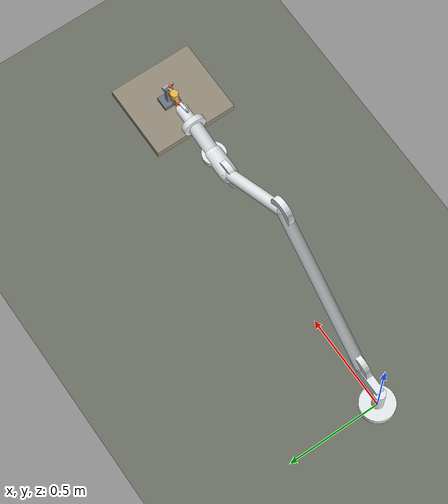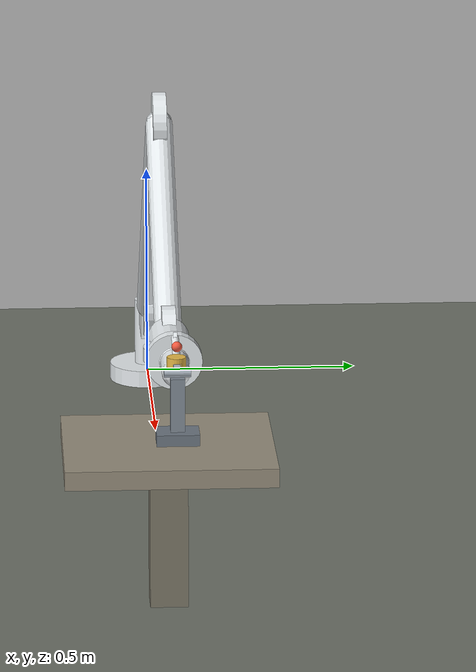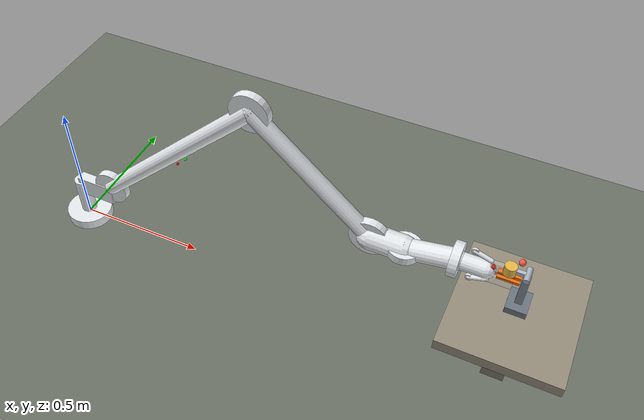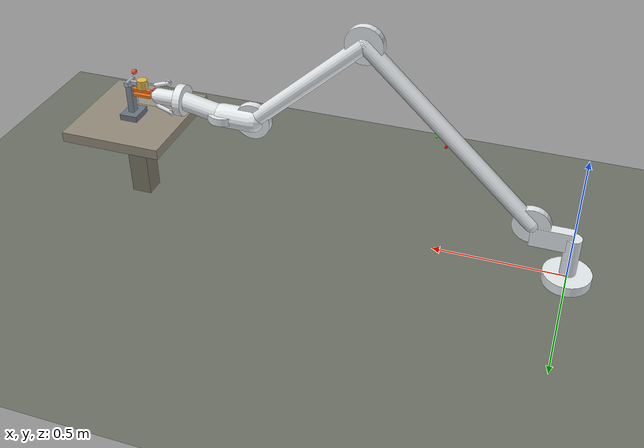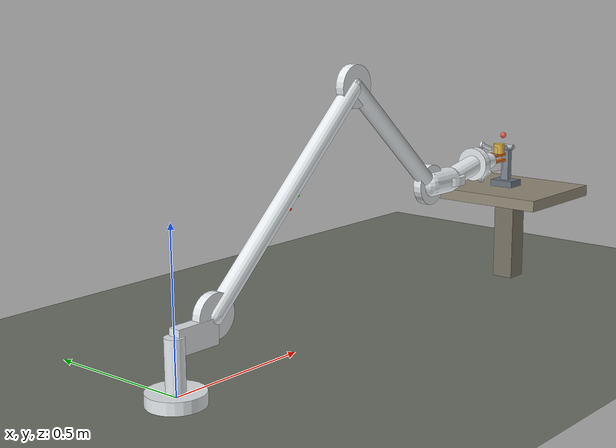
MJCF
<mujoco model="underwater_sampling_l8">
  <include file="_base.xml"/>

  <worldbody>
    <!-- 阀体 + 阀杆（静态）：阀杆是沿 y 的水平轴 -->
    <body name="valve_body" pos="1.72 0.00 0.35">
      <geom name="valve_base" type="box" size="0.035 0.045 0.012" pos="0 0 0.012"
            rgba="0.42 0.46 0.50 1" friction="0.8 0.02 0.001"/>
      <geom name="valve_post" type="box" size="0.012 0.015 0.063" pos="0 0 0.075"
            rgba="0.50 0.54 0.58 1" friction="0.8 0.02 0.001"/>
      <geom name="valve_shaft" type="cylinder" size="0.010 0.028" pos="0 0 0.150"
            quat="0.70710678 0.70710678 0 0"
            rgba="0.66 0.70 0.74 1" friction="0.8 0.02 0.001"/>
    </body>

    <body name="object" pos="1.665 0.00 0.50">
      <joint name="object_joint" type="hinge" axis="0 1 0" pos="0.055 0 0"
             range="-1.31 1.31" limited="true" damping="2.0" frictionloss="0.60"
             armature="0.010" solreflimit="0.002 1"/>
      <geom name="object_geom" type="cylinder" size="0.02 0.018" mass="0.15"
            solref="0.002 1" rgba="0.90 0.72 0.28 1" friction="0.8 0.02 0.001"/>
      <geom name="lever_arm" type="box" size="0.0275 0.007 0.007" pos="0.0275 0 0" mass="0.10"
            rgba="0.72 0.74 0.78 1" friction="0.8 0.02 0.001"/>
      <site name="valve_knob_site" pos="0 0 0" size="0.006"/>
    </body>

    <!-- 目标位置指示球（纯视觉，不参与碰撞）：标出"手柄应当转到哪里"。
         env 按指令把它摆到开位/关位对应的握把三维位置 —— 因为绕 y 轴转动时
         开位和关位的 (x,y) 相同（只差 z），所以只能用三维位置区分，不能放在地面上。 -->
    <body name="place_target" pos="1.6925 0.00 0.5476">
      <geom name="goal_marker" type="sphere" size="0.011"
            rgba="0.95 0.35 0.25 1" contype="0" conaffinity="0"/>
      <site name="place_target_site" pos="0 0 0" size="0.008"/>
    </body>
  </worldbody>

  <keyframe>
    <!-- 前 8 维 = 臂(6)+夹爪(2)；第 9 维 = 阀门铰链角（0=水平起始） -->
    <key name="home" qpos="0.0374 -0.5858 -1.4717 0.3109 -0.1223 -1.5642 0.22 0.22 0.0"
         ctrl="0.0374 -0.5858 -1.4717 0.3109 -0.1223 -1.5642 0.22 0.22"/>
  </keyframe>
</mujoco>

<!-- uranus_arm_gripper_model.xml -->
<mujoco model="uranus_arm_gripper_model_a">
  <compiler angle="radian"/>

  <!-- Model A: complete kinematic/dynamic structure with STL meshes replaced
       by primitive geometry. Gripper simplified to a direct-drive 2-jaw design. -->
  <option timestep="0.001" solver="Newton" iterations="100" tolerance="1e-12"
          cone="elliptic" impratio="10">
    <flag gravity="enable"/>
  </option>

  <worldbody>
    <camera name="top_view" pos="0 0 0.8" xyaxes="0 -1 0  0 0 1" fovy="50"/>
    <body name="base_link" pos="0 0 0">
      <inertial pos="0.00022653 -8.6509e-12 0.017246" quat="1 0 0 0" mass="2.7072" diaginertia="0.0076487 0.0076027 0.014205"/>
      <geom name="base_link_primitive" type="cylinder" size="0.09 0.02" rgba="0.89804 0.91765 0.92941 1"/>

      <body name="link1" pos="0 0 0.021514">
        <inertial pos="0.045493 -0.00030184 0.10957" quat="0.509921 0.489886 0.489726 0.51006" mass="22" diaginertia="0.1916 0.161437 0.138963"/>
        <joint name="joint1" type="hinge" limited="true" range="-3.14 3.14" damping="3000" armature="1" frictionloss="50" pos="0 0 0" axis="0 0 1"/>
        <geom name="link1_hub" type="cylinder" pos="0 0 0.06545" size="0.03 0.09089" rgba="0.89804 0.91765 0.92941 1"/>
        <geom name="link1_beam" type="box" size="0.076525 0.02 0.04" pos="0.076525 0 0.14" rgba="0.89804 0.91765 0.92941 1"/>

        <body name="link2" pos="0.15305 0 0.18178" quat="0.70710678 0.70710678 0 0">
          <inertial pos="0.30213 0.30426 6.3402e-05" quat="0.647239 0.284761 -0.647233 0.284749" mass="24" diaginertia="1.403 1.38077 0.10333"/>
          <joint name="joint2" type="hinge" limited="true" range="-1.527 -0.108" ref="-0.812224" damping="2000" armature="1" frictionloss="80" pos="0 0 0" axis="0 0 1"/>
          <geom name="link2_hub" type="cylinder" size="0.07 0.015" rgba="0.89804 0.91765 0.92941 1"/>
          <geom name="link2_beam" type="capsule" fromto="0 0 0 0.63529 0.60209 0" size="0.03" rgba="0.89804 0.91765 0.92941 1"/>

          <body name="link3" pos="0.63529 0.60209 0">
            <inertial pos="0.24045 -0.15902 0.00044845" quat="0.283173 0.64737 -0.285062 0.647661" mass="13" diaginertia="0.29 0.280416 0.0395839"/>
            <joint name="joint3" type="hinge" limited="true" range="-2.857 -0.164" ref="-1.485888" damping="1500" armature="1" frictionloss="50" pos="0 0 0" axis="0 0 1"/>
            <geom name="link3_hub" type="cylinder" size="0.07 0.015" rgba="0.89804 0.91765 0.92941 1"/>
            <geom name="link3_beam" type="capsule" fromto="0 0 0 0.42294 -0.37646 -0.0022318" size="0.03" rgba="0.89804 0.91765 0.92941 1"/>

            <body name="link4" pos="0.42294 -0.37646 -0.0022318">
              <inertial pos="0.052755 0.00053808 0.00076395" quat="0.500656 0.499526 0.500109 0.499708" mass="9" diaginertia="0.0464 0.0441 0.0169"/>
              <joint name="joint4" type="hinge" ref="0.726678" damping="1500" armature="1" frictionloss="20" pos="0 0 0" axis="0 0 1" limited="true" range="-2.0 2.0"/>
              <geom name="link4_hub" type="cylinder" size="0.07 0.015" rgba="0.89804 0.91765 0.92941 1"/>
              <geom name="link4_beam" type="capsule" fromto="0 0 0 0.12065 -7.62e-05 0" size="0.045" rgba="0.89804 0.91765 0.92941 1"/>

              <body name="link5" pos="0.12065 -7.62e-05 0" quat="0.499998 0.5 0.5 -0.500002">
                <inertial pos="0.0007351 0.093393 0.00070242" quat="0.526825 0.464754 0.477704 0.527502" mass="5.2" diaginertia="0.020302 0.015217 0.013781"/>
                <joint type="hinge" limited="true" range="-1.5708 1.5708" damping="800" armature="1" frictionloss="15" name="joint5" pos="0 0 0" axis="0 0 -1"/>
                <geom name="link5_hub" type="cylinder" size="0.06 0.015" rgba="0.89804 0.91765 0.92941 1"/>
                <geom name="link5_beam" type="capsule" fromto="0 0 0 0 0.168 -0.033659" size="0.036" rgba="0.89804 0.91765 0.92941 1"/>

                <body name="link6" pos="0 0.168 -0.033659" quat="-2.59734e-06 -2.59735e-06 0.707108 0.707105">
                  <camera name="wrist_cam" pos="0 0.1 0.05" xyaxes="1 0 0 0 -1 0" fovy="60"/>
                  <inertial pos="-6.1362e-05 -1.137e-05 0.0050252" quat="0.499873 0.500366 -0.499617 0.500144" mass="1.8289" diaginertia="0.0022148 0.0019893 0.0014508"/>
                  <joint name="joint6" type="hinge" limited="true" range="-3.14 3.14" damping="300" armature="0.1" frictionloss="5" pos="0 0 0" axis="0 0 1"/>
                  <geom name="link6_hub" type="cylinder" size="0.06 0.015" rgba="0.89804 0.91765 0.92941 1"/>
                  <geom name="link6_mount" type="capsule" fromto="0 0 0 0 0 0.096835" size="0.03" rgba="0.89804 0.91765 0.92941 1"/>

                  <body name="tcp_link" pos="0 0 0.105">
                    <geom type="capsule" fromto="0 0 -0.02 0 0 0.02" size="0.008" rgba="1 0.2 0.2 0.5" contype="0" conaffinity="0"/>
                  </body>

                  <body name="jaw1.1" pos="0 -0.063665 0.051257" quat="-0.707105 0 0.707108 0">
                    <inertial pos="0.0113615 0.00520096 -1.75914e-05" quat="0.409182 0.409474 0.576807 0.576364" mass="0.141315" diaginertia="6.71236e-05 3.92491e-05 3.46505e-05"/>
                    <joint name="jaw1.1" type="hinge" damping="2" armature="0.01" pos="0 0 0" axis="0 0 -1" limited="true" range="-0.25 0.35"/>
                    <geom name="jaw1_upper_pin" type="cylinder" size="0.012 0.004" rgba="0.898039 0.917647 0.929412 1" contype="0" conaffinity="0"/>
                    <geom name="jaw1_upper_link" type="capsule" fromto="0 0 0 0.054095 0.018434 0" size="0.008" rgba="0.898039 0.917647 0.929412 1" contype="0" conaffinity="0"/>

                    <body name="jaw1.1.1" pos="0.054095 0.018434 0" quat="0 -1 0 0">
                      <inertial pos="0.0349789 -0.0215957 6.0096e-09" quat="0.553511 0.553511 0.440029 0.440029" mass="0.610989" diaginertia="0.000555616 0.000469289 0.000163674"/>
                      <geom name="jaw1_pad_primitive" type="box" pos="0.04 -0.017 0" size="0.04 0.017 0.008" rgba="1 1 1 0.25" contype="0" conaffinity="0"/>
                      <!-- 齿面改成橙色并去掉透明：原来 rgba 的 alpha=0（完全透明），
                           遥操作时人根本看不见哪两片在夹东西（看到的大白块是旁边不参与碰撞的装饰垫）。 -->
                      <geom name="jaw1_tooth_col" type="box" pos="0.0635 -0.0337 -0.00003" size="0.0364 0.0051 0.008" condim="4" friction="10 0.02 0.001" solref="0.002 1" rgba="1 0.45 0.05 1"/>
                      <site name="hole_site_3" pos="0.00508 -0.027152 0" size="0.001" rgba="1 0 0 1"/>
                      <site name="jaw1_a" pos="0.0075 -0.027 0" size="0.01" rgba="1 0 0 1"/>
                    </body>
                  </body>

                  <body name="jaw2.1" pos="0 0.063665 0.051257" quat="0.707105 0 -0.707108 0">
                    <inertial pos="0.0113614 -0.00520085 1.75948e-05" quat="0.576812 0.576359 0.409177 0.409479" mass="0.141315" diaginertia="6.71236e-05 3.92491e-05 3.46505e-05"/>
                    <joint name="jaw2.1" type="hinge" damping="2" armature="0.01" pos="0 0 0" axis="0 0 1" limited="true" range="-0.25 0.35"/>
                    <geom name="jaw2_upper_pin" type="cylinder" size="0.012 0.004" rgba="0.898039 0.917647 0.929412 1" contype="0" conaffinity="0"/>
                    <geom name="jaw2_upper_link" type="capsule" fromto="0 0 0 0.054095 -0.018434 0" size="0.008" rgba="0.898039 0.917647 0.929412 1" contype="0" conaffinity="0"/>

                    <body name="jaw2.1.1" pos="0.054095 -0.018434 0" quat="0 -1 0 0">
                      <inertial pos="0.0378307 0.0233564 -6.41901e-09" quat="0.440029 0.440029 0.553511 0.553511" mass="0.56493" diaginertia="0.000545939 0.000468282 0.000153997"/>
                      <geom name="jaw2_pad_primitive" type="box" pos="0.04 0.017 0" size="0.04 0.017 0.008" rgba="1 1 1 0.25" contype="0" conaffinity="0"/>
                      <geom name="jaw2_tooth_col" type="box" pos="0.0635 0.0337 -0.00003" size="0.0364 0.0051 0.008" condim="4" friction="10 0.02 0.001" solref="0.002 1" rgba="1 0.45 0.05 1"/>
                      <site name="hole_site_4" pos="0.00508 0.027152 0" size="0.001" rgba="1 0 0 1"/>
                      <site name="jaw2_a" pos="0.0075 0.027 0" size="0.01" rgba="1 0 0 1"/>
                    </body>
                  </body>
                </body>
              </body>
            </body>
          </body>

          <site name="hole_site_1" pos="0.33041 0.25666 0" size="0.005" rgba="1 0 0 1"/>
          <site name="hole_site_2" pos="0.36645 0.29246 0" size="0.005" rgba="0 1 0 1"/>
        </body>
      </body>
    </body>
  </worldbody>

  <contact>
    <exclude body1="base_link" body2="link1"/>
    <exclude body1="link2" body2="link3"/>
    <exclude body1="link3" body2="link4"/>
    <exclude body1="link4" body2="link5"/>
    <exclude body1="link5" body2="link6"/>
    <exclude body1="link6" body2="jaw1.1"/>
    <exclude body1="link6" body2="jaw2.1"/>
    <exclude body1="jaw1.1.1" body2="jaw1.1"/>
    <exclude body1="jaw2.1.1" body2="jaw2.1"/>
  </contact>

  <actuator>
    <position name="joint1_act" joint="joint1" kp="450000" kv="2750" ctrlrange="-3.14 3.14"/>
    <position name="joint2_act" joint="joint2" kp="450000" kv="2750" ctrlrange="-1.527 -0.108"/>
    <position name="joint3_act" joint="joint3" kp="450000" kv="2750" ctrlrange="-2.857 -0.164"/>
    <position name="joint4_act" joint="joint4" kp="300000" kv="1100" ctrlrange="-2.18 1.78"/>
    <position name="joint5_act" joint="joint5" kp="240000" kv="825" ctrlrange="-1.5708 1.5708"/>
    <position name="joint6_act" joint="joint6" kp="90000" kv="550" ctrlrange="-3.14 3.14"/>
    <!-- Gripper: 2-jaw direct-drive position control (the original tendon + 4-bar
         linkage sags open at horizontal poses, so it was simplified). -->
    <position name="jaw1.1_act" joint="jaw1.1" kp="3000" kv="50" ctrlrange="-0.25 0.35"/>
    <position name="jaw2.1_act" joint="jaw2.1" kp="3000" kv="50" ctrlrange="-0.25 0.35"/>
  </actuator>

  <sensor>
    <jointpos name="gripper_position" joint="jaw1.1"/>
  </sensor>

  <!-- NOTE: no built-in "home" keyframe here; each scene (scene_*.xml) defines its
       own keyframe to keep qpos length matched (reach vs grasp freejoint). -->
</mujoco>

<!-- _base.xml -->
<mujoco model="underwater_sampling_base">
  <compiler angle="radian"/>
  <option timestep="0.002" integrator="implicitfast" cone="elliptic" impratio="10"/>

  <visual>
    <!-- 离屏渲染缓冲：要 >= 显示窗口尺寸，否则 mujoco.Renderer 直接报错 -->
    <global offwidth="1280" offheight="800"/>
    <headlight ambient="0.45 0.45 0.45" diffuse="0.55 0.55 0.55" specular="0.1 0.1 0.1"/>
    <quality shadowsize="2048"/>
    <map znear="0.02" zfar="30"/>
  </visual>

  <worldbody>
    <!-- 海床：比抓取场景的地面暗、低饱和，给"低对比度"留出余量 -->
    <geom name="floor" type="plane" size="4 4 0.05" pos="0 0 -0.05" rgba="0.42 0.44 0.40 1"/>
    <light pos="3 3 4" dir="-3 -3 -4" diffuse="0.70 0.70 0.68"/>

    <!-- 沉积物工作台（等价于抓取场景里的"桌面"） -->
    <body name="seabed" pos="1.72 -0.02 0">
      <geom name="seabed_top" type="box" size="0.20 0.22 0.02" pos="0 0 0.33"
            rgba="0.58 0.55 0.48 1" friction="0.7 0.02 0.001"/>
      <geom name="seabed_pedestal" type="box" size="0.04 0.04 0.165" pos="0 0 0.165"
            rgba="0.48 0.46 0.40 1" friction="0.7 0.02 0.001"/>
    </body>

    <!-- 俯视/侧视相机（策略输入视角） -->
    <camera name="grasp_cam" pos="1.60 -1.0 1.0" xyaxes="1 0 0  0 0.5 0.866" fovy="50"/>
  </worldbody>

  <!-- 相对路径按**主文件**（各级场景，同在 scenes/ 下）所在目录解析，所以是往上两级到 WYSD/ -->
  <include file="../../Lerobot-Uranus-VLA-Demo/asset/uranus/uranus_arm_gripper_model.xml"/>
</mujoco>
